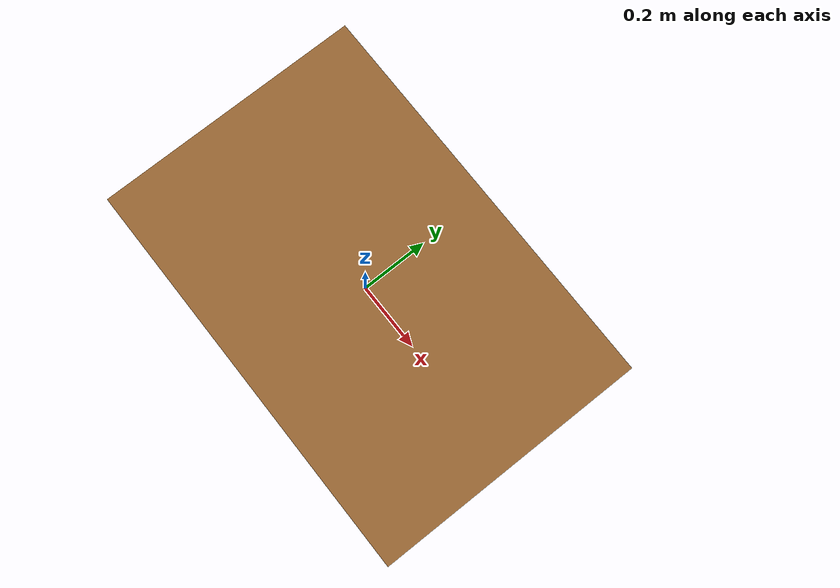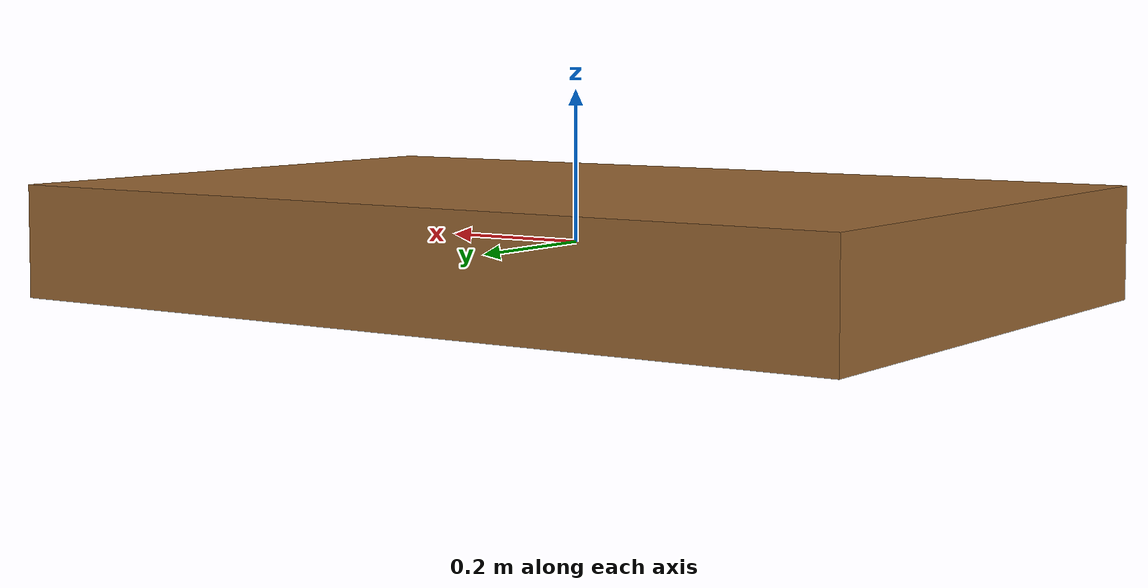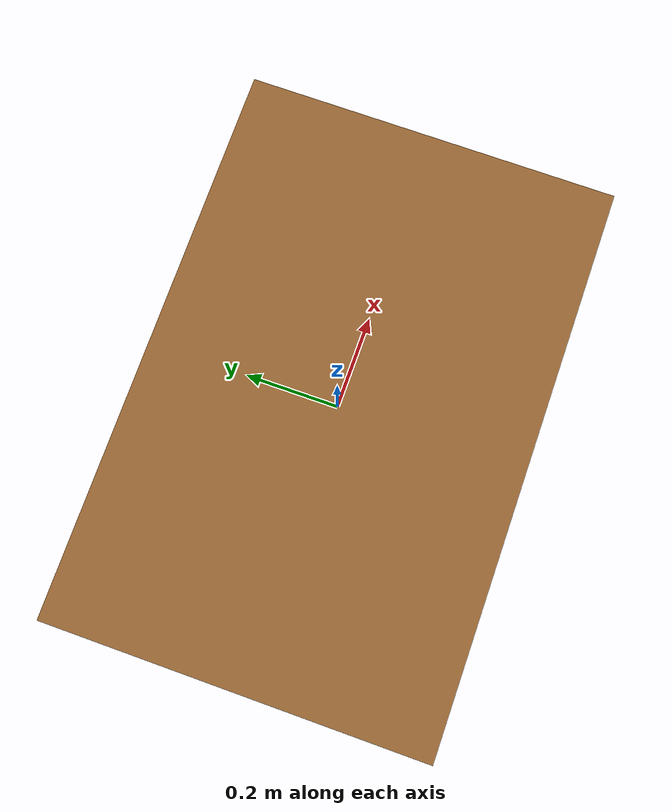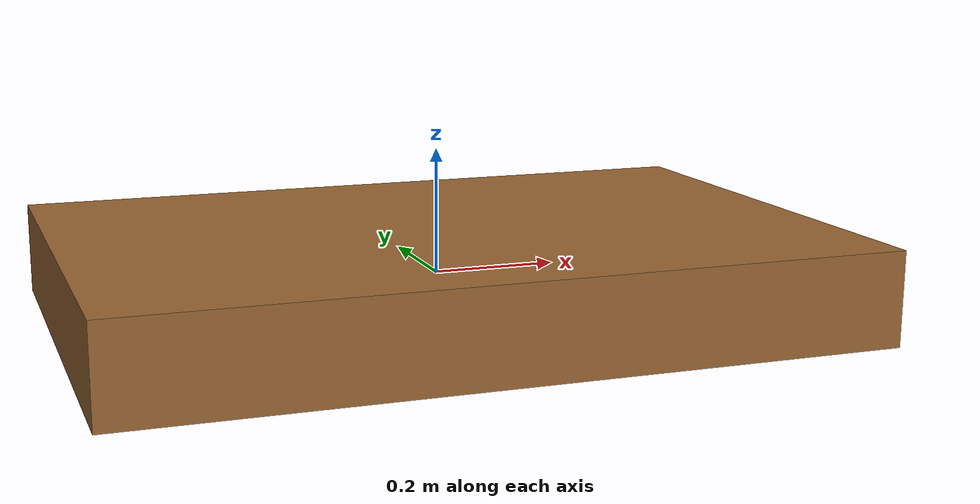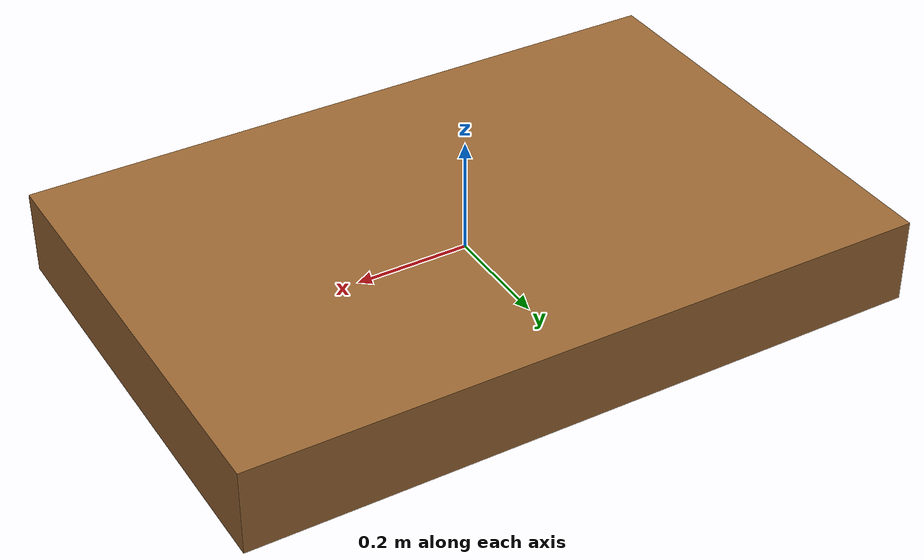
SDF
<?xml version="1.0"?>
<sdf version="1.6">
  <model name="pallet">
    <static>true</static>

    <!-- The model's internal geometry is centered at its origin -->
    <link name="pallet_link">
      <collision name="collision">
        <geometry>
          <box><size>1.2 0.8 0.15</size></box>
        </geometry>
      </collision>

      <visual name="visual">
        <geometry>
          <box><size>1.2 0.8 0.15</size></box>
        </geometry>
        <material>
          <ambient>0.6 0.4 0.2 1</ambient>
          <diffuse>0.6 0.4 0.2 1</diffuse>
        </material>
      </visual>
    </link>
  </model>
</sdf>
